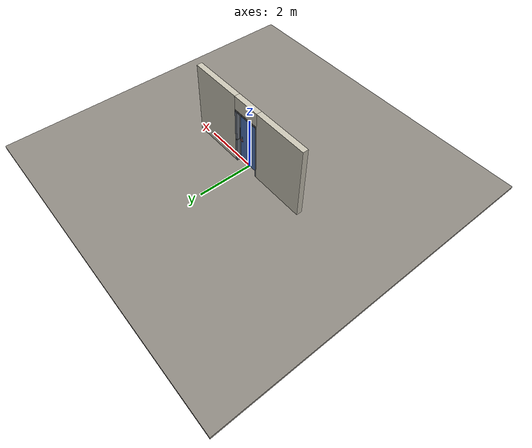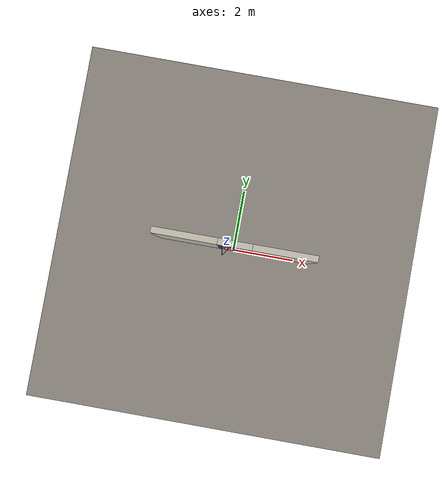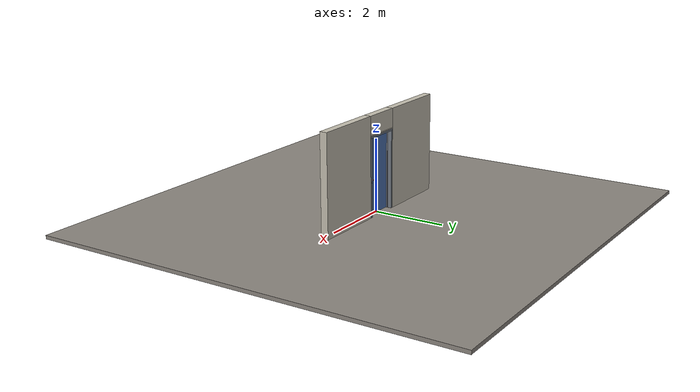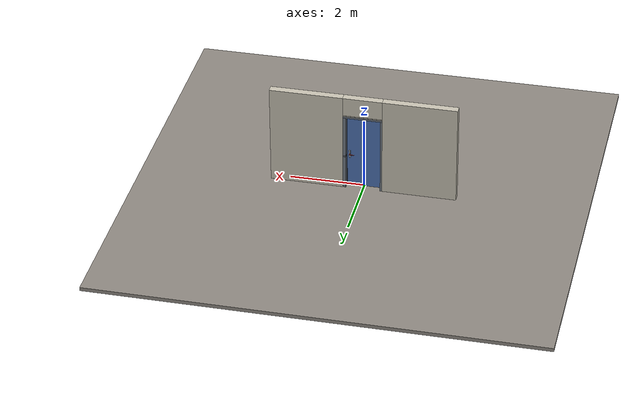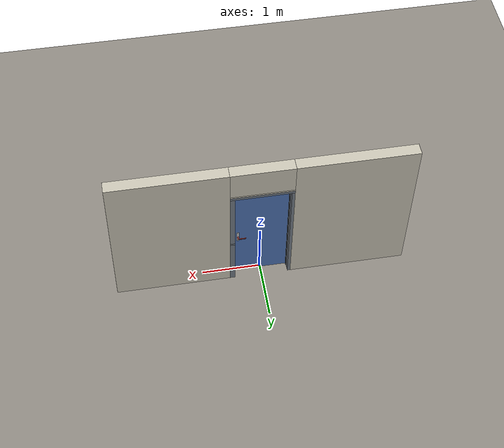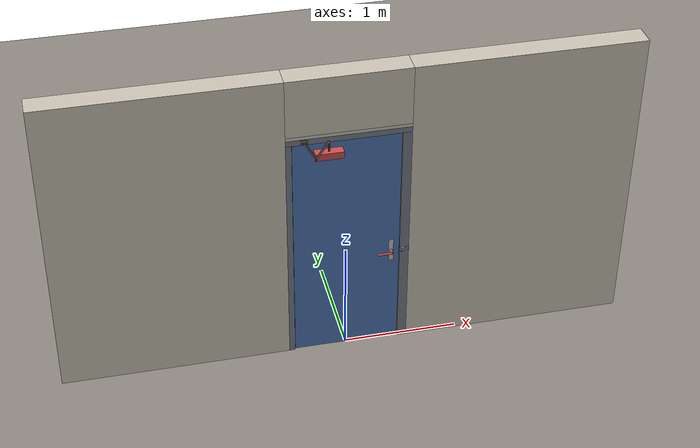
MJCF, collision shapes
<?xml version="1.0" ?>
<mujoco model="db0715_swing_single_full">
  <compiler angle="radian" meshdir="../../hardware" texturedir="../../textures" autolimits="true" inertiafromgeom="false"/>
  <option timestep="0.002" integrator="implicitfast" cone="elliptic" impratio="10" noslip_iterations="3">
    <flag multiccd="enable"/>
  </option>
  <size memory="16M"/>
  <default>
    <geom condim="4" solref="0.005 1" solimp="0.95 0.99 0.001"/>
    <joint solreflimit="0.005 1" solimplimit="0.95 0.99 0.001"/>
    <tendon solreflimit="0.005 1"/>
    <equality solref="0.002 1"/>
  </default>
  <visual>
    <headlight ambient="0.4 0.4 0.4" diffuse="0.7 0.7 0.7" specular="0.2 0.2 0.2"/>
    <quality shadowsize="4096"/>
    <map znear="0.01" zfar="60"/>
  </visual>
  <asset>
    <mesh name="closer_body_b226fdb10b" file="closer_body_b226fdb10b.obj"/>
    <mesh name="hinge_e22b26c0c1" file="hinge_e22b26c0c1.obj"/>
    <mesh name="hinge_jamb_e1d088f8dc" file="hinge_jamb_e1d088f8dc.obj"/>
    <mesh name="lever_f913fc5b7b" file="lever_f913fc5b7b.obj"/>
    <material name="mat_floor" rgba="0.55 0.53 0.5 1" specular="0.2" shininess="0.15" reflectance="0"/>
    <material name="mat_wall" rgba="0.78 0.76 0.7 1" specular="0.2" shininess="0.1" reflectance="0"/>
    <material name="mat_leaf" rgba="0.3 0.45 0.7 1" specular="0.23" shininess="0.39" reflectance="0.02"/>
    <material name="mat_hinge" rgba="0.65 0.66 0.68 1" specular="0.74" shininess="0.5" reflectance="0.36"/>
    <material name="mat_op_stainless" rgba="0.75 0.76 0.77 1" specular="0.8" shininess="0.65" reflectance="0.4"/>
    <material name="mat_trim" rgba="0.85 0.66 0.3 1" specular="0.8" shininess="0.75" reflectance="0.4"/>
    <material name="mat_bolt" rgba="0.85 0.66 0.3 1" specular="0.8" shininess="0.75" reflectance="0.4"/>
    <material name="mat_frame" rgba="0.45 0.48 0.52 1" specular="0.32" shininess="0.6" reflectance="0.08"/>
    <material name="mat_closer" rgba="0.22 0.17 0.13 1" specular="0.8" shininess="0.6" reflectance="0.4"/>
    <texture name="skybox" type="skybox" builtin="gradient" rgb1="0.6 0.7 0.85" rgb2="0.9 0.92 0.95" width="256" height="256"/>
  </asset>
  <worldbody>
    <light name="sun" pos="1.5 -2.5 4" dir="-0.3 0.5 -0.8" directional="true" diffuse="0.8 0.8 0.8" specular="0.3 0.3 0.3" castshadow="true"/>
    <light name="fill" pos="-1.5 2.5 3" dir="0.3 -0.5 -0.7" directional="true" diffuse="0.35 0.35 0.4" castshadow="false"/>
    <camera name="robot_view" pos="0 -2.566812 1.812087" xyaxes="1 0 0 0 0.26963 0.962964" fovy="52"/>
    <camera name="far_view" pos="0 2.708813 1.812087" xyaxes="-1 0 0 0 -0.26963 0.962964" fovy="52"/>
    <camera name="iso" pos="2.004737 -2.144762 2.234138" xyaxes="0.741536 0.670913 0 -0.242917 0.268487 0.932151" fovy="46"/>
    <camera name="detail_handle" pos="0.4625 -0.877 1.245" xyaxes="0.97561 0.219512 0 -0.070934 0.315262 0.94635" fovy="38"/>
    <geom name="floor" type="box" size="6 6 0.05" pos="0 0 -0.05" material="mat_floor" group="0" contype="1" conaffinity="1" friction="0.8 0.005 0.0001" density="2400"/>
    <geom name="wall_left" type="box" size="0.99475 0.1 1.3735" pos="-1.50525 0.071 1.3735" material="mat_wall" group="0" contype="1" conaffinity="1" friction="0.6 0.005 0.0001" density="800"/>
    <geom name="wall_right" type="box" size="0.97975 0.1 1.3735" pos="1.52025 0.071 1.3735" material="mat_wall" group="0" contype="1" conaffinity="1" friction="0.6 0.005 0.0001" density="800"/>
    <geom name="wall_header" type="box" size="0.5255 0.1 0.26" pos="0.015 0.071 2.487" material="mat_wall" group="0" contype="1" conaffinity="1" friction="0.6 0.005 0.0001" density="800"/>
    <geom name="hinge_0_jamb" type="mesh" mesh="hinge_jamb_e1d088f8dc" pos="-0.4575 -0.029 0.259" material="mat_hinge" group="1" contype="0" conaffinity="0" density="7850"/>
    <geom name="hinge_1_jamb" type="mesh" mesh="hinge_jamb_e1d088f8dc" pos="-0.4575 -0.029 1.076" material="mat_hinge" group="1" contype="0" conaffinity="0" density="7850"/>
    <geom name="hinge_2_jamb" type="mesh" mesh="hinge_jamb_e1d088f8dc" pos="-0.4575 -0.029 1.963" material="mat_hinge" group="1" contype="0" conaffinity="0" density="7850"/>
    <geom name="jamb_hinge" type="box" size="0.025 0.1 1.0735" pos="-0.4855 0.071 1.0735" material="mat_frame" group="0" contype="1" conaffinity="1" friction="0.6 0.005 0.0001" density="300"/>
    <geom name="strike_965_wall_n" type="box" size="0.04 0.081575 0.0167" pos="0.5005 0.089425 0.965" material="mat_frame" group="0" contype="1" conaffinity="1" friction="0.6 0.005 0.0001" density="300"/>
    <geom name="strike_965_wall_p" type="box" size="0.04 0.008 0.0167" pos="0.5005 -0.01585 0.965" material="mat_frame" group="0" contype="1" conaffinity="1" friction="0.6 0.005 0.0001" density="300"/>
    <geom name="strike_965_ramp" type="box" size="0.04 0.01649 0.0167" pos="0.503736 -0.022234 0.965" quat="0.977148 0 0 0.212558" material="mat_frame" group="0" contype="1" conaffinity="1" friction="0.12 0.005 0.0001" density="300"/>
    <geom name="strike_965_back" type="box" size="0.03165 0.00785 0.0167" pos="0.50885 0 0.965" material="mat_frame" group="0" contype="1" conaffinity="1" friction="0.6 0.005 0.0001" density="300"/>
    <geom name="jamb_strike_0" type="box" size="0.04 0.1 0.47415" pos="0.5005 0.071 0.47415" material="mat_frame" group="0" contype="1" conaffinity="1" friction="0.6 0.005 0.0001" density="300"/>
    <geom name="jamb_strike_1" type="box" size="0.04 0.1 0.58265" pos="0.5005 0.071 1.56435" material="mat_frame" group="0" contype="1" conaffinity="1" friction="0.6 0.005 0.0001" density="300"/>
    <geom name="jamb_head" type="box" size="0.5255 0.1 0.025" pos="0.015 0.071 2.172" material="mat_frame" group="0" contype="1" conaffinity="1" friction="0.6 0.005 0.0001" density="300"/>
    <geom name="head_stud" type="box" size="0.5255 0.1 0.015" pos="0.015 0.071 2.212" material="mat_wall" group="0" contype="1" conaffinity="1" friction="0.6 0.005 0.0001" density="500"/>
    <geom name="stop_hinge" type="box" size="0.0055 0.016 1.0735" pos="-0.455 0.0385 1.0735" material="mat_frame" group="0" contype="1" conaffinity="1" friction="0.6 0.005 0.0001" density="300"/>
    <geom name="stop_strike" type="box" size="0.0055 0.016 1.0735" pos="0.455 0.0385 1.0735" material="mat_frame" group="0" contype="1" conaffinity="1" friction="0.6 0.005 0.0001" density="300"/>
    <geom name="stop_head" type="box" size="0.4605 0.016 0.0055" pos="0 0.0385 2.1415" material="mat_frame" group="0" contype="1" conaffinity="1" friction="0.6 0.005 0.0001" density="300"/>
    <geom name="closer_bracket" type="box" size="0.03 0.012 0.014" pos="-0.3605 -0.041 2.177" material="mat_closer" group="1" contype="0" conaffinity="0" density="2700"/>
    <site name="approach_point" pos="0 -1.5 0" quat="1 0 0 0" size="0.05" rgba="0.2 0.9 0.2 0.5" group="4"/>
    <site name="goal_point" pos="0 1.5 0" quat="1 0 0 0" size="0.05" rgba="0.2 0.9 0.2 0.5" group="4"/>
    <site name="door_plane_center" pos="0 0 1.0735" quat="1 0 0 0" size="0.02" rgba="0.2 0.9 0.2 0.5" group="4"/>
    <body name="leaf" pos="-0.4605 0 0">
      <inertial pos="0.432366 -0.009128 1.216348" mass="51.176552" quat="-0.495121 0.479558 0.51181 0.512767" diaginertia="3.321315424 22.755147838 26.020213943"/>
      <joint name="leaf_hinge" type="hinge" axis="0 0 -1" pos="0.003 -0.029 0" limited="true" range="0 1.570796" damping="10.268966" frictionloss="0.620611" stiffness="12.254931" springref="-1.689116" armature="0.02"/>
      <geom name="leaf_slab" type="box" size="0.457 0.022 1.067" pos="0.46 0 1.076" material="mat_leaf" group="0" contype="1" conaffinity="1" friction="0.4 0.005 0.0001" density="1"/>
      <geom name="hinge_0" type="mesh" mesh="hinge_e22b26c0c1" pos="0.003 -0.029 0.259" material="mat_hinge" group="1" contype="0" conaffinity="0" density="7850"/>
      <geom name="hinge_1" type="mesh" mesh="hinge_e22b26c0c1" pos="0.003 -0.029 1.076" material="mat_hinge" group="1" contype="0" conaffinity="0" density="7850"/>
      <geom name="hinge_2" type="mesh" mesh="hinge_e22b26c0c1" pos="0.003 -0.029 1.963" material="mat_hinge" group="1" contype="0" conaffinity="0" density="7850"/>
      <geom name="leaf_handle_escutcheon_n" type="box" size="0.02 0.0015 0.11" pos="0.847 -0.0235 0.965" material="mat_op_stainless" group="1" contype="0" conaffinity="0" density="3000"/>
      <geom name="leaf_handle_escutcheon_p" type="box" size="0.02 0.0015 0.11" pos="0.847 0.0235 0.965" material="mat_op_stainless" group="1" contype="0" conaffinity="0" density="3000"/>
      <geom name="leaf_latch_bolt_faceplate" type="box" size="0.0006 0.01235 0.0267" pos="0.9164 0 0.965" material="mat_bolt" group="1" contype="0" conaffinity="0" density="8500"/>
      <geom name="closer_body" type="mesh" mesh="closer_body_b226fdb10b" pos="0.3 -0.022 2.054" quat="0.707107 0.707107 0 0" material="mat_closer" group="1" contype="0" conaffinity="0" density="2000"/>
      <geom name="closer_body_col" type="box" size="0.12 0.04 0.03" pos="0.3 -0.062 2.054" material="mat_closer" group="3" contype="1" conaffinity="1" rgba="0.8 0.3 0.3 0.25" friction="0.6 0.005 0.0001" density="2000"/>
      <geom name="closer_pinion_shaft" type="cylinder" size="0.008 0.0615" pos="0.3 -0.064 2.1155" material="mat_closer" group="1" contype="0" conaffinity="0" density="2700"/>
      <site name="leaf_edge_mid" pos="0.917 0 1.067" quat="1 0 0 0" size="0.02" rgba="0.2 0.9 0.2 0.5" group="4"/>
      <body name="leaf_handle" pos="0.847 0 0.965">
        <inertial pos="-0.038995 0 0" mass="0.772658" quat="0.707107 0 0 -0.707107" diaginertia="0.001545312 0.003473151 0.004979007"/>
        <joint name="leaf_handle_hinge" type="hinge" axis="0 -1 0" limited="true" range="0 0.65" damping="0.225568" frictionloss="0.051863" stiffness="1" springref="-0.503022" armature="0.01"/>
        <geom name="leaf_handle_spindle" type="cylinder" size="0.006 0.034" pos="0 0 0" quat="0.707107 -0.707107 0 0" material="mat_op_stainless" group="1" contype="0" conaffinity="0" density="7850"/>
        <geom name="leaf_handle_lever_n" type="mesh" mesh="lever_f913fc5b7b" pos="0 -0.022 0" quat="0.707107 0.707107 0 0" material="mat_op_stainless" group="1" contype="0" conaffinity="0" density="3000"/>
        <geom name="leaf_handle_lever_col_n" type="capsule" size="0.0095 0.0555" pos="-0.065 -0.077 0" quat="0.707107 0 -0.707107 0" material="mat_op_stainless" group="3" contype="1" conaffinity="1" rgba="0.8 0.3 0.3 0.25" friction="0.7 0.01 0.0001" density="3000"/>
        <geom name="leaf_handle_hub_col_n" type="cylinder" size="0.012 0.022" pos="0 -0.052 0" quat="0.707107 -0.707107 0 0" material="mat_op_stainless" group="3" contype="1" conaffinity="1" rgba="0.8 0.3 0.3 0.25" friction="0.6 0.005 0.0001" density="3000"/>
        <geom name="leaf_handle_lever_p" type="mesh" mesh="lever_f913fc5b7b" pos="0 0.022 0" quat="-0.707107 0.707107 0 0" material="mat_op_stainless" group="1" contype="0" conaffinity="0" density="3000"/>
        <geom name="leaf_handle_lever_col_p" type="capsule" size="0.0095 0.0555" pos="-0.065 0.077 0" quat="0.707107 0 -0.707107 0" material="mat_op_stainless" group="3" contype="1" conaffinity="1" rgba="0.8 0.3 0.3 0.25" friction="0.7 0.01 0.0001" density="3000"/>
        <geom name="leaf_handle_hub_col_p" type="cylinder" size="0.012 0.022" pos="0 0.052 0" quat="0.707107 -0.707107 0 0" material="mat_op_stainless" group="3" contype="1" conaffinity="1" rgba="0.8 0.3 0.3 0.25" friction="0.6 0.005 0.0001" density="3000"/>
        <site name="leaf_handle_grip_n" pos="-0.104 -0.077 0" quat="1 0 0 0" size="0.012" rgba="0.2 0.9 0.2 0.5" group="4"/>
        <site name="leaf_handle_grip_p" pos="-0.104 0.077 0" quat="1 0 0 0" size="0.012" rgba="0.2 0.9 0.2 0.5" group="4"/>
      </body>
      <body name="leaf_latch_bolt" pos="0.917 0 0.965">
        <inertial pos="-0.00865 0 0" mass="0.041419" quat="0.92388 -0.382683 0 0" diaginertia="0.000000798 0.000005598 0.000005598"/>
        <joint name="leaf_latch_bolt_slide" type="slide" axis="-1 0 0" limited="true" range="0 0.0127" damping="2" frictionloss="0.3" stiffness="300" springref="-0.008333" armature="0.1"/>
        <geom name="leaf_latch_bolt_capsule" type="capsule" size="0.00635 0.015" pos="-0.00865 0 0" quat="0.707107 0 0.707107 0" material="mat_bolt" group="0" contype="1" conaffinity="1" friction="0.2 0.005 0.0001" density="8500"/>
      </body>
      <body name="closer_arm_main" pos="0.3 -0.064 2.177" quat="0.472212 0 0 -0.881485">
        <inertial pos="0.14 0 0" mass="0.12096" quat="1 0 0 0" diaginertia="0.000003588 0.00079128 0.000792852"/>
        <joint name="closer_pinion" type="hinge" axis="0 0 1" limited="false" damping="0.01" armature="0.002"/>
        <geom name="closer_arm_main_geom" type="box" size="0.14 0.008 0.005" pos="0.14 0 0" material="mat_closer" group="1" contype="0" conaffinity="0" density="2700"/>
        <body name="closer_arm_fore" pos="0.28 0 0" quat="-0.371222 0 0 0.928544">
          <inertial pos="0.128088 0 0" mass="0.076531" quat="1 0 0 0" diaginertia="0.000001771 0.000437665 0.000438201"/>
          <joint name="closer_elbow" type="hinge" axis="0 0 1" limited="false" damping="0.01" armature="0.002"/>
          <geom name="closer_arm_fore_geom" type="box" size="0.1125 0.007 0.004" pos="0.1125 0 0" material="mat_closer" group="1" contype="0" conaffinity="0" density="2700"/>
          <geom name="closer_fore_neck" type="box" size="0.0175 0.003 0.003" pos="0.2425 0 0" material="mat_closer" group="1" contype="0" conaffinity="0" density="2700"/>
          <geom name="closer_fore_pivot" type="cylinder" size="0.005 0.012" pos="0.26 0 0" material="mat_closer" group="1" contype="0" conaffinity="0" density="2700"/>
        </body>
      </body>
    </body>
  </worldbody>
  <tendon>
    <fixed name="leaf_latch_bolt_coupling" limited="true" range="0 10">
      <joint joint="leaf_latch_bolt_slide" coef="1"/>
      <joint joint="leaf_handle_hinge" coef="-0.02082"/>
    </fixed>
  </tendon>
  <equality>
    <connect name="closer_arm_connect" body1="closer_arm_fore" body2="world" anchor="0.26 0 0" active="true"/>
  </equality>
  <contact>
    <exclude body1="closer_arm_main" body2="leaf"/>
    <exclude body1="closer_arm_fore" body2="leaf"/>
    <exclude body1="closer_arm_main" body2="closer_arm_fore"/>
  </contact>
  <sensor>
    <jointpos name="leaf_hinge_pos" joint="leaf_hinge"/>
    <jointvel name="leaf_hinge_vel" joint="leaf_hinge"/>
    <jointpos name="leaf_handle_hinge_pos" joint="leaf_handle_hinge"/>
    <jointvel name="leaf_handle_hinge_vel" joint="leaf_handle_hinge"/>
    <jointpos name="leaf_latch_bolt_slide_pos" joint="leaf_latch_bolt_slide"/>
    <jointvel name="leaf_latch_bolt_slide_vel" joint="leaf_latch_bolt_slide"/>
  </sensor>
</mujoco>
